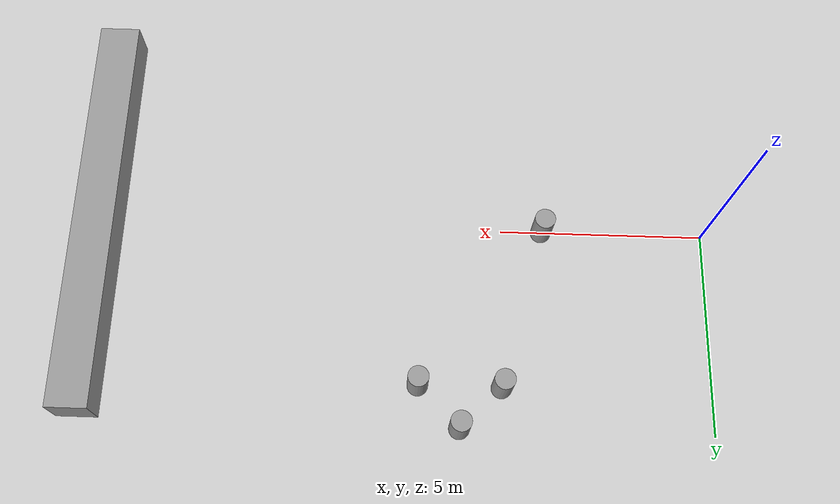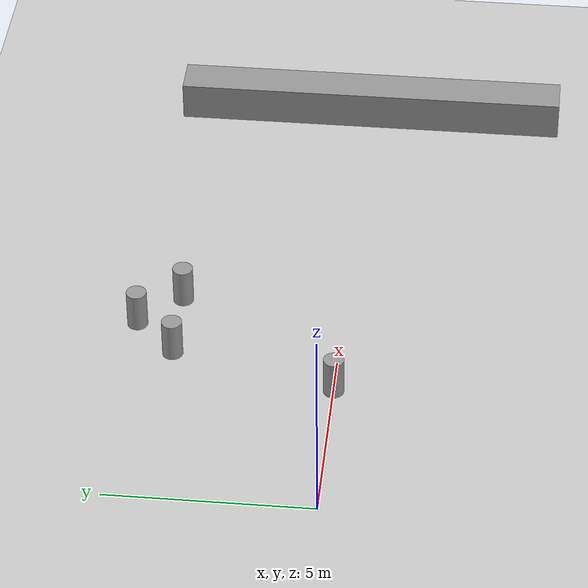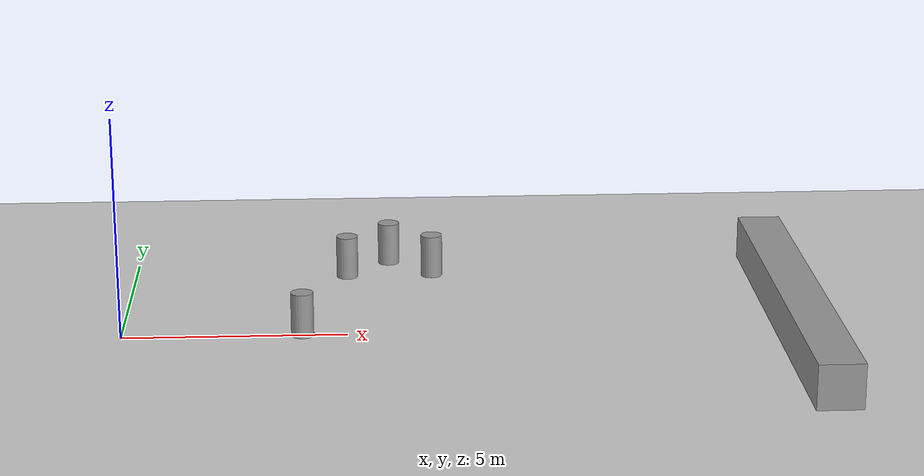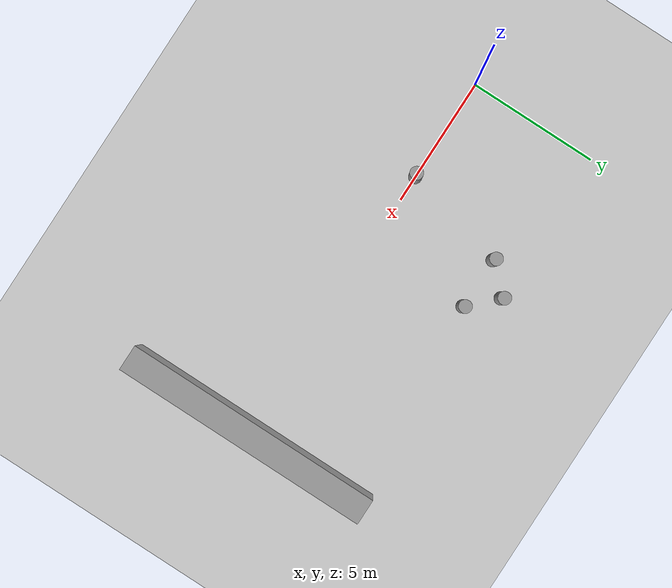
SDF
<sdf version="1.6">
 <world name="default">
  <scene><ambient>0.4 0.4 0.4 1</ambient><background>0.7 0.7 0.7 1</background><shadows>1</shadows></scene>
  <light name="sun" type="directional">
   <pose>0 0 10 0 -0 0</pose>
   <diffuse>0.8 0.8 0.8 1</diffuse>
   <specular>0.2 0.2 0.2 1</specular>
   <attenuation>
    <range>1000</range>
    <constant>0.9</constant>
    <linear>0.01</linear>
    <quadratic>0.001</quadratic>
   </attenuation>
   <direction>-0.5 0.1 -0.9</direction>
   <spot><inner_angle>0</inner_angle><outer_angle>0</outer_angle><falloff>0</falloff></spot>
  </light>
  <model name="ground_plane">
   <static>1</static>
   <link name="link">
    <collision name="collision">
     <geometry><plane><normal>0 0 1</normal><size>100 100</size></plane></geometry>
     <surface>
      <contact><collide_bitmask>65535</collide_bitmask></contact>
      <friction><ode><mu>100</mu><mu2>50</mu2></ode></friction>
     </surface>
    </collision>
    <visual name="visual">
     <cast_shadows>0</cast_shadows>
     <geometry><plane><normal>0 0 1</normal><size>100 100</size></plane></geometry>
     <material>
      <script><uri>file://media/materials/scripts/gazebo.material</uri><name>Gazebo/Grey</name></script>
     </material>
    </visual>
   </link>
  </model>
  <physics name="default_physics" default="0" type="ode">
   <real_time_update_rate>1000</real_time_update_rate>
   <max_step_size>0.001</max_step_size>
   <real_time_factor>1</real_time_factor>
   <ode>
    <solver>
     <type>quick</type>
     <iters>150</iters>
     <precon_iters>0</precon_iters>
     <sor>1.4</sor>
     <use_dynamic_moi_rescaling>1</use_dynamic_moi_rescaling>
    </solver>
    <constraints>
     <cfm>1e-05</cfm>
     <erp>0.2</erp>
     <contact_max_correcting_vel>2000</contact_max_correcting_vel>
     <contact_surface_layer>0.01</contact_surface_layer>
    </constraints>
   </ode>
  </physics>
  <gravity>0 0 -9.8</gravity>
  <magnetic_field>6e-06 2.3e-05 -4.2e-05</magnetic_field>
  <atmosphere type="adiabatic"/>
  <spherical_coordinates>
   <surface_model>EARTH_WGS84</surface_model>
   <latitude_deg>0</latitude_deg>
   <longitude_deg>0</longitude_deg>
   <elevation>0</elevation>
   <heading_deg>0</heading_deg>
  </spherical_coordinates>
  <model name="unit_cylinder">
   <link name="link">
    <inertial>
     <mass>1</mass>
     <inertia><ixx>0.1</ixx><ixy>0</ixy><ixz>0</ixz><iyy>0.1</iyy><iyz>0</iyz><izz>0.03125</izz></inertia>
    </inertial>
    <visual name="visual">
     <geometry><cylinder><radius>0.25</radius><length>1</length></cylinder></geometry>
     <material>
      <script><name>Gazebo/Grey</name><uri>file://media/materials/scripts/gazebo.material</uri></script>
      <shader type="pixel"><normal_map>__default__</normal_map></shader>
      <ambient>0.3 0.3 0.3 1</ambient>
      <diffuse>0.7 0.7 0.7 1</diffuse>
      <specular>0.01 0.01 0.01 1</specular>
      <emissive>0 0 0 1</emissive>
     </material>
    </visual>
    <collision name="collision">
     <geometry><cylinder><radius>0.25</radius><length>1</length></cylinder></geometry>
     <surface>
      <friction>
       <ode><mu>1</mu><mu2>1</mu2><fdir1>0 0 0</fdir1><slip1>0</slip1><slip2>0</slip2></ode>
       <torsional>
        <coefficient>1</coefficient>
        <patch_radius>0</patch_radius>
        <surface_radius>0</surface_radius>
        <use_patch_radius>1</use_patch_radius>
        <ode><slip>0</slip></ode>
       </torsional>
      </friction>
      <bounce><restitution_coefficient>0</restitution_coefficient><threshold>1e+06</threshold></bounce>
      <contact>
       <collide_without_contact>0</collide_without_contact>
       <collide_without_contact_bitmask>1</collide_without_contact_bitmask>
       <collide_bitmask>1</collide_bitmask>
       <ode>
        <soft_cfm>0</soft_cfm>
        <soft_erp>0.2</soft_erp>
        <kp>1e+13</kp>
        <kd>1</kd>
        <max_vel>0.01</max_vel>
        <min_depth>0</min_depth>
       </ode>
       <bullet>
        <split_impulse>1</split_impulse>
        <split_impulse_penetration_threshold>-0.01</split_impulse_penetration_threshold>
        <soft_cfm>0</soft_cfm>
        <soft_erp>0.2</soft_erp>
        <kp>1e+13</kp>
        <kd>1</kd>
       </bullet>
      </contact>
     </surface>
    </collision>
   </link>
   <static>0</static>
   <pose>4 -1e-06 0.499992 2e-06 2e-06 0</pose>
  </model>
  <model name="unit_cylinder_clone">
   <link name="link">
    <inertial>
     <mass>1</mass>
     <inertia><ixx>0.1</ixx><ixy>0</ixy><ixz>0</ixz><iyy>0.1</iyy><iyz>0</iyz><izz>0.03125</izz></inertia>
    </inertial>
    <visual name="visual">
     <geometry><cylinder><radius>0.25</radius><length>1</length></cylinder></geometry>
     <material>
      <script><name>Gazebo/Grey</name><uri>file://media/materials/scripts/gazebo.material</uri></script>
      <shader type="pixel"><normal_map>__default__</normal_map></shader>
      <ambient>0.3 0.3 0.3 1</ambient>
      <diffuse>0.7 0.7 0.7 1</diffuse>
      <specular>0.01 0.01 0.01 1</specular>
      <emissive>0 0 0 1</emissive>
     </material>
    </visual>
    <collision name="collision">
     <geometry><cylinder><radius>0.25</radius><length>1</length></cylinder></geometry>
     <surface>
      <friction>
       <ode><mu>1</mu><mu2>1</mu2><fdir1>0 0 0</fdir1><slip1>0</slip1><slip2>0</slip2></ode>
       <torsional>
        <coefficient>1</coefficient>
        <patch_radius>0</patch_radius>
        <surface_radius>0</surface_radius>
        <use_patch_radius>1</use_patch_radius>
        <ode><slip>0</slip></ode>
       </torsional>
      </friction>
      <bounce><restitution_coefficient>0</restitution_coefficient><threshold>1e+06</threshold></bounce>
      <contact>
       <collide_without_contact>0</collide_without_contact>
       <collide_without_contact_bitmask>1</collide_without_contact_bitmask>
       <collide_bitmask>1</collide_bitmask>
       <ode>
        <soft_cfm>0</soft_cfm>
        <soft_erp>0.2</soft_erp>
        <kp>1e+13</kp>
        <kd>1</kd>
        <max_vel>0.01</max_vel>
        <min_depth>0</min_depth>
       </ode>
       <bullet>
        <split_impulse>1</split_impulse>
        <split_impulse_penetration_threshold>-0.01</split_impulse_penetration_threshold>
        <soft_cfm>0</soft_cfm>
        <soft_erp>0.2</soft_erp>
        <kp>1e+13</kp>
        <kd>1</kd>
       </bullet>
      </contact>
     </surface>
    </collision>
   </link>
   <static>0</static>
   <pose>5 4 0.499993 2e-06 2e-06 0</pose>
  </model>
  <model name="unit_cylinder_clone_clone">
   <link name="link">
    <inertial>
     <mass>1</mass>
     <inertia><ixx>0.1</ixx><ixy>0</ixy><ixz>0</ixz><iyy>0.1</iyy><iyz>0</iyz><izz>0.03125</izz></inertia>
    </inertial>
    <visual name="visual">
     <geometry><cylinder><radius>0.25</radius><length>1</length></cylinder></geometry>
     <material>
      <script><name>Gazebo/Grey</name><uri>file://media/materials/scripts/gazebo.material</uri></script>
      <shader type="pixel"><normal_map>__default__</normal_map></shader>
      <ambient>0.3 0.3 0.3 1</ambient>
      <diffuse>0.7 0.7 0.7 1</diffuse>
      <specular>0.01 0.01 0.01 1</specular>
      <emissive>0 0 0 1</emissive>
     </material>
    </visual>
    <collision name="collision">
     <geometry><cylinder><radius>0.25</radius><length>1</length></cylinder></geometry>
     <surface>
      <friction>
       <ode><mu>1</mu><mu2>1</mu2><fdir1>0 0 0</fdir1><slip1>0</slip1><slip2>0</slip2></ode>
       <torsional>
        <coefficient>1</coefficient>
        <patch_radius>0</patch_radius>
        <surface_radius>0</surface_radius>
        <use_patch_radius>1</use_patch_radius>
        <ode><slip>0</slip></ode>
       </torsional>
      </friction>
      <bounce><restitution_coefficient>0</restitution_coefficient><threshold>1e+06</threshold></bounce>
      <contact>
       <collide_without_contact>0</collide_without_contact>
       <collide_without_contact_bitmask>1</collide_without_contact_bitmask>
       <collide_bitmask>1</collide_bitmask>
       <ode>
        <soft_cfm>0</soft_cfm>
        <soft_erp>0.2</soft_erp>
        <kp>1e+13</kp>
        <kd>1</kd>
        <max_vel>0.01</max_vel>
        <min_depth>0</min_depth>
       </ode>
       <bullet>
        <split_impulse>1</split_impulse>
        <split_impulse_penetration_threshold>-0.01</split_impulse_penetration_threshold>
        <soft_cfm>0</soft_cfm>
        <soft_erp>0.2</soft_erp>
        <kp>1e+13</kp>
        <kd>1</kd>
       </bullet>
      </contact>
     </surface>
    </collision>
   </link>
   <static>0</static>
   <pose>6 5 0.499993 2e-06 2e-06 0</pose>
  </model>
  <model name="unit_cylinder_clone_clone_clone">
   <link name="link">
    <inertial>
     <mass>1</mass>
     <inertia><ixx>0.1</ixx><ixy>0</ixy><ixz>0</ixz><iyy>0.1</iyy><iyz>0</iyz><izz>0.03125</izz></inertia>
    </inertial>
    <visual name="visual">
     <geometry><cylinder><radius>0.25</radius><length>1</length></cylinder></geometry>
     <material>
      <script><name>Gazebo/Grey</name><uri>file://media/materials/scripts/gazebo.material</uri></script>
      <shader type="pixel"><normal_map>__default__</normal_map></shader>
      <ambient>0.3 0.3 0.3 1</ambient>
      <diffuse>0.7 0.7 0.7 1</diffuse>
      <specular>0.01 0.01 0.01 1</specular>
      <emissive>0 0 0 1</emissive>
     </material>
    </visual>
    <collision name="collision">
     <geometry><cylinder><radius>0.25</radius><length>1</length></cylinder></geometry>
     <surface>
      <friction>
       <ode><mu>1</mu><mu2>1</mu2><fdir1>0 0 0</fdir1><slip1>0</slip1><slip2>0</slip2></ode>
       <torsional>
        <coefficient>1</coefficient>
        <patch_radius>0</patch_radius>
        <surface_radius>0</surface_radius>
        <use_patch_radius>1</use_patch_radius>
        <ode><slip>0</slip></ode>
       </torsional>
      </friction>
      <bounce><restitution_coefficient>0</restitution_coefficient><threshold>1e+06</threshold></bounce>
      <contact>
       <collide_without_contact>0</collide_without_contact>
       <collide_without_contact_bitmask>1</collide_without_contact_bitmask>
       <collide_bitmask>1</collide_bitmask>
       <ode>
        <soft_cfm>0</soft_cfm>
        <soft_erp>0.2</soft_erp>
        <kp>1e+13</kp>
        <kd>1</kd>
        <max_vel>0.01</max_vel>
        <min_depth>0</min_depth>
       </ode>
       <bullet>
        <split_impulse>1</split_impulse>
        <split_impulse_penetration_threshold>-0.01</split_impulse_penetration_threshold>
        <soft_cfm>0</soft_cfm>
        <soft_erp>0.2</soft_erp>
        <kp>1e+13</kp>
        <kd>1</kd>
       </bullet>
      </contact>
     </surface>
    </collision>
   </link>
   <static>0</static>
   <pose>7 4 0.499998 -2e-06 -2e-06 0</pose>
  </model>
  <model name="wall">
   <link name="link">
    <inertial>
     <mass>6</mass>
     <inertia><ixx>18.5</ixx><ixy>0</ixy><ixz>0</ixz><iyy>1</iyy><iyz>0</iyz><izz>18.5</izz></inertia>
    </inertial>
    <visual name="visual">
     <geometry><box><size>1 10 1</size></box></geometry>
     <material>
      <script><name>Gazebo/Grey</name><uri>file://media/materials/scripts/gazebo.material</uri></script>
      <shader type="pixel"><normal_map>__default__</normal_map></shader>
      <ambient>0.3 0.3 0.3 1</ambient>
      <diffuse>0.7 0.7 0.7 1</diffuse>
      <specular>0.01 0.01 0.01 1</specular>
      <emissive>0 0 0 1</emissive>
     </material>
    </visual>
    <collision name="collision">
     <geometry><box><size>1 10 1</size></box></geometry>
     <surface>
      <friction>
       <ode><mu>1</mu><mu2>1</mu2><fdir1>0 0 0</fdir1><slip1>0</slip1><slip2>0</slip2></ode>
       <torsional>
        <coefficient>1</coefficient>
        <patch_radius>0</patch_radius>
        <surface_radius>0</surface_radius>
        <use_patch_radius>1</use_patch_radius>
        <ode><slip>0</slip></ode>
       </torsional>
      </friction>
      <bounce><restitution_coefficient>0</restitution_coefficient><threshold>1e+06</threshold></bounce>
      <contact>
       <collide_without_contact>0</collide_without_contact>
       <collide_without_contact_bitmask>1</collide_without_contact_bitmask>
       <collide_bitmask>1</collide_bitmask>
       <ode>
        <soft_cfm>0</soft_cfm>
        <soft_erp>0.2</soft_erp>
        <kp>1e+13</kp>
        <kd>1</kd>
        <max_vel>0.01</max_vel>
        <min_depth>0</min_depth>
       </ode>
       <bullet>
        <split_impulse>1</split_impulse>
        <split_impulse_penetration_threshold>-0.01</split_impulse_penetration_threshold>
        <soft_cfm>0</soft_cfm>
        <soft_erp>0.2</soft_erp>
        <kp>1e+13</kp>
        <kd>1</kd>
       </bullet>
      </contact>
     </surface>
    </collision>
   </link>
   <static>0</static>
   <pose>15 0 0.5 0 -0 0</pose>
  </model>
 </world>
</sdf>
